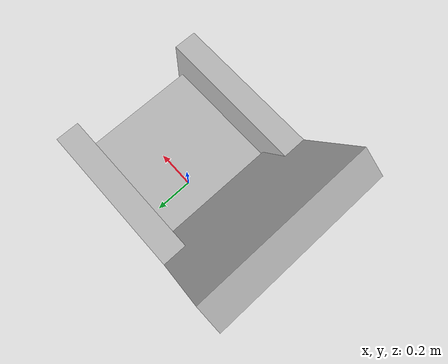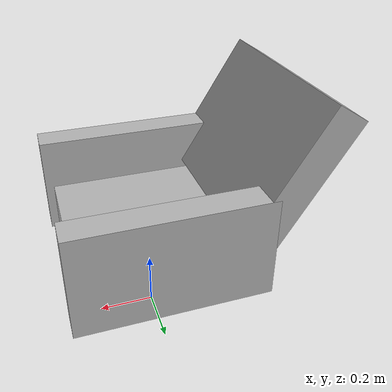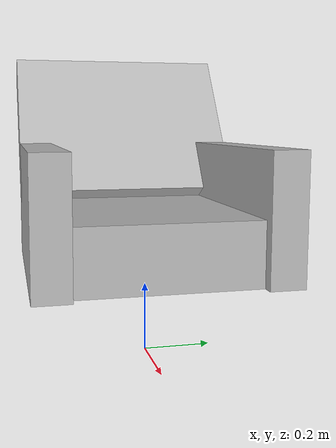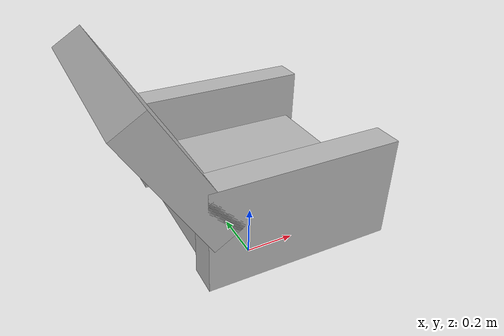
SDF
<?xml version="1.0" ?>
<sdf version="1.6">
  <model name="rwc2024/chair">
    <static>true</static>
    <link name="base_link">
      <collision name="base_col">
        <geometry>
          <box>
            <size>0.6 0.5 0.18</size>
          </box>
        </geometry>
      </collision>
      <visual name="base_vis">
        <geometry>
          <box>
            <size>0.6 0.5 0.18</size>
          </box>
        </geometry>
      </visual>
      <pose>0.0 0.0 0.34 0 0 0</pose>
    </link>
    <link name="right_armrest_link">
      <collision name="right_armrest_col">
        <geometry>
          <box>
            <size>0.66 0.1 0.36</size>
          </box>
        </geometry>
      </collision>
      <visual name="right_armrest_vis">
        <geometry>
          <box>
            <size>0.66 0.1 0.36</size>
          </box>
        </geometry>
      </visual>
      <pose>0.0 0.3 0.43 0 0 0</pose>
    </link>
    <link name="left_armrest_link">
      <collision name="left_armrest_col">
        <geometry>
          <box>
            <size>0.66 0.1 0.36</size>
          </box>
        </geometry>
      </collision>
      <visual name="left_armrest_vis">
        <geometry>
          <box>
            <size>0.66 0.1 0.36</size>
          </box>
        </geometry>
      </visual>
      <pose>0.0 -0.3 0.43 0 0 0</pose>
    </link>
    <link name="back_link">
      <collision name="back_col">
        <geometry>
          <box>
            <size>0.12 0.7 0.512</size>
          </box>
        </geometry>
      </collision>
      <visual name="back_vis">
        <geometry>
          <box>
            <size>0.12 0.7 0.512</size>
          </box>
        </geometry>
      </visual>
      <pose>-0.395 0 0.6475 0 -0.555493735 0</pose>
    </link>
    <link name="on_top_of">
      <virtual_volume name="on_top_of_vv">
        <geometry>
          <box>
            <size>0.4 0.4 0.35</size>
          </box>
        </geometry>
        <pose>0.075 0.0 0.625 0 0 0</pose>
      </virtual_volume>
    </link>
    <link name="in_front_of">
      <virtual_volume name="in_front_of_vv">
        <geometry>
          <box>
            <size>0.2 1.1 0.01</size>
          </box>
        </geometry>
        <pose>0.9 0.0 0.005 0 0 0</pose>
      </virtual_volume>
    </link>
  </model>
</sdf>
